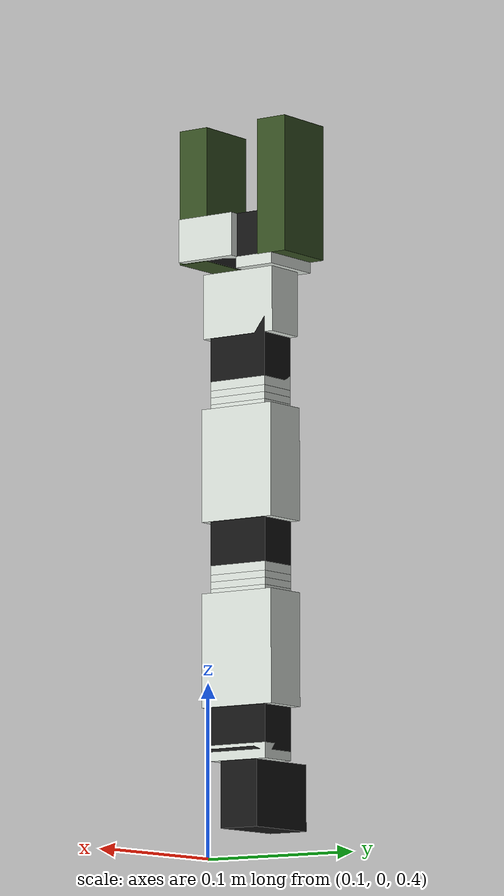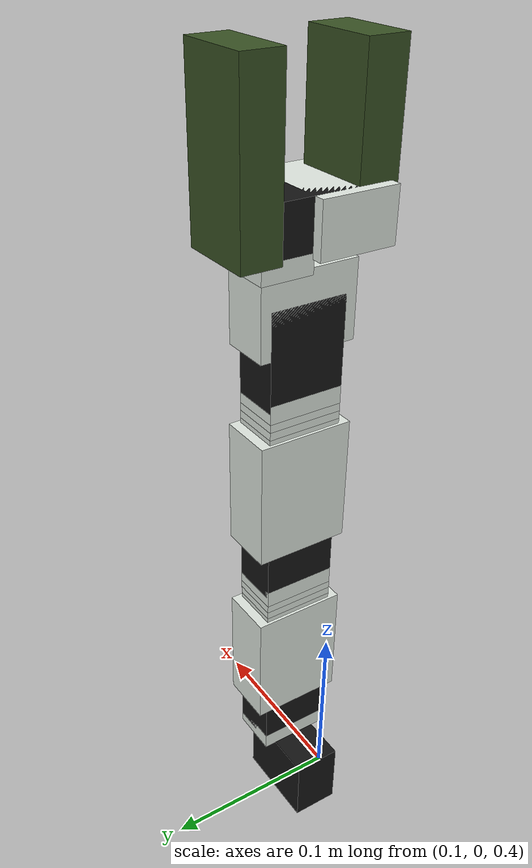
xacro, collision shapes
<?xml version="1.0"?>
<!-- Describe URDF for Turtlebot Arm -->
<robot name="turtlebot_arm" xmlns:xacro="http://ros.org/wiki/xacro">

    <!-- We can configure joints velocity limit and lower/upper limits
         to allow access to different operational areas, e.g. left handed vs. right handed robot -->
    <xacro:property name="joints_vlimit" value="1.571"/>
    <xacro:property name="pan_llimit" value="-2.617"/>
    <xacro:property name="pan_ulimit" value="2.617"/>
    <xacro:property name="shoulder_llimit" value="-2.617"/>
    <xacro:property name="shoulder_ulimit" value="2.617"/>
    <xacro:property name="elbow_llimit" value="-2.617"/>
    <xacro:property name="elbow_ulimit" value="2.617"/>
    <xacro:property name="wrist_llimit" value="-1.745"/>
    <xacro:property name="wrist_ulimit" value="1.745"/>

    <!-- Included URDF Files -->
    <xacro:include filename="$(find pxpincher_description)/urdf/turtlebot_arm.xacro"/>

    <!-- As we don't have here a turtlebot base, add a base_link link as its location reference -->
    <link name="base_link"/>

    <!-- Turtlebot arm macro -->
    <turtlebot_arm parent="base_link" color="White" gripper_color="Green"
                    pincher_gripper="false" turtlebot_gripper="true">
      <!-- Place the "floating" arm at the location it should be if mounted on a turtlebot,
           as pick and place and other demos assume this location -->
      <origin xyz="0.1 0.03 0.435"/>
    </turtlebot_arm>
</robot>

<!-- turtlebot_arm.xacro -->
<!-- Arm description for Turtlebot Arm and PhantomX Pincher arm -->
<robot xmlns:xacro="http://ros.org/wiki/xacro">
  <xacro:include filename="$(find pxpincher_description)/urdf/arm_hardware.xacro"/>

  <material name="White">
    <color rgba="0.87 0.90 0.87 1.0"/>
  </material>
  <material name="Black">
    <color rgba="0.08 0.08 0.08 1.0"/>
  </material>
  <material name="Gray">
    <color rgba="0.2 0.2 0.21 1.0"/>
  </material>
  <material name="Green">
    <color rgba="0.22 0.32 0.14 1.0"/>
  </material>

  <xacro:macro name="turtlebot_arm" params="parent color pincher_gripper turtlebot_gripper gripper_color *origin">
    <link name="arm_base_link"/>
    <joint name="arm_base_joint" type="fixed">
      <insert_block name="origin"/>
      <parent link="${parent}"/>
      <child link="arm_base_link"/>
    </joint>

    <!-- fake gripper_link joint gives us a free servo!
         this makes us 5DOF and saves you $44.90
         that's a lot of coin! -->
    <link name="gripper_link"/>
    <joint name="gripper_link_joint" type="revolute">
      <origin xyz="0 0 0.112" rpy="0 -1.57 0"/>
      <parent link="arm_wrist_flex_link"/>
      <child link="gripper_link"/>
      <limit effort="30" velocity="1" lower="-3.14" upper="3.14"/>
      <axis xyz="1 0 0"/>
    </joint>

    <!-- shoulder pan joint -->
    <dynamixel_AX12_fixed parent="arm_base_link" name="arm_shoulder_pan_servo">
      <origin xyz="0 0 0" rpy="${M_PI/2} 0 ${M_PI/2}"/>
    </dynamixel_AX12_fixed>
    <bioloid_F3_revolute parent="arm_shoulder_pan_servo_link" name="arm_shoulder_pan" color="${color}"
                         vlimit="${joints_vlimit}" llimit="${pan_llimit}" ulimit="${pan_ulimit}">
      <origin xyz="0 ${AX12_WIDTH/2} 0" rpy="${-M_PI/2} ${M_PI/2} ${M_PI}"/>
    </bioloid_F3_revolute>

    <!-- shoulder lift joint -->
    <dynamixel_AX12_fixed parent="arm_shoulder_pan_link" name="arm_shoulder_lift_servo">
      <origin xyz="0 0 ${-AX12_HEIGHT-F10_HEIGHT+0.001}" rpy="0 ${M_PI} 0"/>
    </dynamixel_AX12_fixed>
    <bioloid_F4_revolute parent="arm_shoulder_lift_servo_link" name="arm_shoulder_lift" color="${color}"
                         vlimit="${joints_vlimit}" llimit="${shoulder_llimit}" ulimit="${shoulder_ulimit}">
      <origin xyz="0 0 0" rpy="0 0 0"/>
    </bioloid_F4_revolute>
    <bioloid_F10_fixed parent="arm_shoulder_lift_link" name="arm_shoulder_F10_0" color="${color}">
      <origin xyz="0 0 ${F4_HEIGHT+F10_HEIGHT/2}" rpy="0 0 0"/>
    </bioloid_F10_fixed>
    <bioloid_F10_fixed parent="arm_shoulder_F10_0_link" name="arm_shoulder_F10_1" color="${color}">
      <origin xyz="0 0 ${F10_HEIGHT}" rpy="0 0 0"/>
    </bioloid_F10_fixed>
    <bioloid_F10_fixed parent="arm_shoulder_F10_1_link" name="arm_shoulder_F10_2" color="${color}">
      <origin xyz="0 0 ${F10_HEIGHT}" rpy="0 0 0"/>
    </bioloid_F10_fixed>
    <bioloid_F3_fixed parent="arm_shoulder_F10_2_link" name="arm_shoulder_F3_0" color="${color}">
      <origin xyz="0 0 ${F10_HEIGHT/2}" rpy="0 ${M_PI} 0"/>
    </bioloid_F3_fixed>

    <!-- elbow joint -->
    <dynamixel_AX12_fixed parent="arm_shoulder_F3_0_link" name="arm_elbow_flex_servo">
      <origin xyz="0 0 ${-AX12_HEIGHT-F10_HEIGHT+0.001}" rpy="0 ${M_PI} 0"/>
    </dynamixel_AX12_fixed>
    <bioloid_F4_revolute parent="arm_elbow_flex_servo_link" name="arm_elbow_flex" color="${color}"
                         vlimit="${joints_vlimit}" llimit="${elbow_llimit}" ulimit="${elbow_ulimit}">
      <origin xyz="0 0 0" rpy="0 0 0"/>
    </bioloid_F4_revolute>
    <bioloid_F10_fixed parent="arm_elbow_flex_link" name="arm_elbow_F10_0" color="${color}">
      <origin xyz="0 0 ${F4_HEIGHT+F10_HEIGHT/2}" rpy="0 0 0"/>
    </bioloid_F10_fixed>
    <bioloid_F10_fixed parent="arm_elbow_F10_0_link" name="arm_elbow_F10_1" color="${color}">
      <origin xyz="0 0 ${F10_HEIGHT}" rpy="0 0 0"/>
    </bioloid_F10_fixed>
    <bioloid_F10_fixed parent="arm_elbow_F10_1_link" name="arm_elbow_F10_2" color="${color}">
      <origin xyz="0 0 ${F10_HEIGHT}" rpy="0 0 0"/>
    </bioloid_F10_fixed>
    <bioloid_F3_fixed parent="arm_elbow_F10_2_link" name="arm_elbow_F3_0" color="${color}">
      <origin xyz="0 0 ${F10_HEIGHT/2}" rpy="0 ${M_PI} 0"/>
    </bioloid_F3_fixed>

    <!-- wrist joint -->
    <dynamixel_AX12_fixed parent="arm_elbow_F3_0_link" name="arm_wrist_flex_servo">
      <origin xyz="0 0 ${-AX12_HEIGHT-F10_HEIGHT+0.001}" rpy="0 ${M_PI} 0"/>
    </dynamixel_AX12_fixed>
    <bioloid_F2_revolute parent="arm_wrist_flex_servo_link" name="arm_wrist_flex" color="${color}"
                         vlimit="${joints_vlimit}" llimit="${wrist_llimit}" ulimit="${wrist_ulimit}">
      <origin xyz="0 0 0" rpy="0 0 0"/>
    </bioloid_F2_revolute>

  <!-- gripper - Load either Turtlebot gripper or Pincher Gripper -->
  <xacro:if value="${pincher_gripper}">
  <xacro:include filename="$(find pxpincher_description)/urdf/pincher_gripper.xacro"/>
  </xacro:if>
  <xacro:if value="${turtlebot_gripper}">
  <xacro:include filename="$(find pxpincher_description)/urdf/turtlebot_gripper.xacro"/>
  </xacro:if>

  </xacro:macro>

</robot>

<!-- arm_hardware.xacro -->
<!-- Basic URDF components for Turtlebot Arm and PhantomX Pincher Arm-->
<robot xmlns:xacro="http://ros.org/wiki/xacro">
  <xacro:property name="M_PI" value="3.14159"/>
  <xacro:property name="M_SCALE" value="0.001"/>
  <xacro:property name="F10_HEIGHT" value="0.004"/>
  <xacro:property name="F4_HEIGHT" value="0.0525"/>
  <xacro:property name="F3_HEIGHT" value="0.009"/>
  <xacro:property name="AX12_HEIGHT" value="0.0385"/>
  <xacro:property name="AX12_WIDTH" value="0.038"/>
  <xacro:property name="AX12_LENGTH" value="0.050"/>
  <xacro:property name="F2_HEIGHT" value="0.0265"/>
  <xacro:property name="FACTOR_GRIPPER_TRANSL" value="0.01"/>
  <xacro:property name="OFFSET_GRIPPER_TRANSL" value="0.029"/>

  <xacro:macro name="arm_mount" params="parent name color *origin">
    <joint name="${name}_joint" type="fixed">
      <insert_block name="origin"/>
      <parent link="${parent}"/>
      <child link="${name}_link"/>
    </joint>

    <link name="${name}_link">
      <inertial>
        <mass value="0.018"/>
        <origin xyz="0 0 0"/>
        <inertia ixx="0.000001" ixy="0.0" ixz="0.0"
                 iyy="0.000001" iyz="0.0"
                 izz="0.000001"/>
      </inertial>

      <visual>
        <origin xyz="-0.028 -0.0493 0.014" rpy="0.0 0.0 -${M_PI/2}"/>
        <geometry>
          <mesh filename="package://pxpincher_description/meshes/mount.stl" scale="${M_SCALE} ${M_SCALE} ${M_SCALE}"/>
        </geometry>
        <material name="${color}"/>
      </visual>

      <collision>
        <origin xyz="-0.01 0.0 0.0165" rpy="0.0 0.0 0.0"/>
        <geometry>
          <box size="0.074 0.074 0.004"/>
        </geometry>
      </collision>
    </link>

    <gazebo reference="${name}_link">
      <material>Gazebo/${color}</material>
      <selfCollide>true</selfCollide>
      <gravity>true</gravity>
    </gazebo>
  </xacro:macro>

  <xacro:macro name="finger_fixed" params="parent name color *origin">
    <joint name="${name}_joint" type="fixed">
      <insert_block name="origin"/>
      <parent link="${parent}"/>
      <child link="${name}_link"/>
    </joint>

    <link name="${name}_link">
      <inertial>
        <mass value="0.015"/>
        <origin xyz="0 0 0"/>
        <inertia ixx="0.000001" ixy="0.0" ixz="0.0"
                 iyy="0.000001" iyz="0.0"
                 izz="0.000001"/>
      </inertial>

      <visual>
        <origin xyz=" 0 0 0 " rpy="0 0 0"/>
        <geometry>
          <mesh filename="package://pxpincher_description/meshes/turtlebot_finger.stl" scale="${M_SCALE} ${M_SCALE} ${M_SCALE}"/>
        </geometry>
        <material name="${color}"/>
      </visual>

      <collision>
        <origin xyz="0.02645 0.0 -0.00655" rpy="0 0 0"/>
        <geometry>
          <box size="0.0783 0.03801 0.0193"/>
        </geometry>
      </collision>
    </link>

    <gazebo reference="${name}_link">
      <material>Gazebo/${color}</material>
      <selfCollide>true</selfCollide>
      <gravity>true</gravity>
    </gazebo>
  </xacro:macro>

  <xacro:macro name="dynamixel_AX12_fixed" params="parent name *origin">
    <joint name="${name}_joint" type="fixed">
      <insert_block name="origin"/>
      <parent link="${parent}"/>
      <child link="${name}_link"/>
    </joint>

    <link name="${name}_link">
      <inertial>
        <mass value="0.055"/>
        <origin xyz="0 0 0"/>
        <inertia ixx="0.000017012" ixy="0.0" ixz="0.0"
                 iyy="0.000013258" iyz="0.0"
                 izz="0.000009483"/>
      </inertial>

      <visual>
        <origin xyz=" 0 0 0 " rpy="0 0 0"/>
        <geometry>
          <mesh filename="package://pxpincher_description/meshes/ax12_box.stl" scale="${M_SCALE} ${M_SCALE} ${M_SCALE}"/>
        </geometry>
        <material name="Black"/>
      </visual>

      <collision>
        <origin xyz="0.0 0.0 -0.01241" rpy="0 0 0"/>
        <geometry>
          <box size="0.025 0.038 0.04762"/>
        </geometry>
      </collision>
    </link>

    <gazebo reference="${name}_link">
      <material>Gazebo/Black</material>
      <selfCollide>true</selfCollide>
      <gravity>true</gravity>
    </gazebo>
  </xacro:macro>

  <xacro:macro name="bioloid_F10_fixed" params="parent name color *origin">
    <joint name="${name}_joint" type="fixed">
      <insert_block name="origin"/>
      <parent link="${parent}"/>
      <child link="${name}_link"/>
    </joint>

    <link name="${name}_link">
      <inertial>
        <mass value="0.004"/>
        <origin xyz="0 0 0"/>
        <inertia ixx="0.000001" ixy="0.0" ixz="0.0"
                 iyy="0.000001" iyz="0.0"
                 izz="0.000001"/>
      </inertial>

      <visual>
        <origin xyz=" 0 0 0 " rpy="0 0 0"/>
        <geometry>
          <mesh filename="package://pxpincher_description/meshes/F10.stl" scale="${M_SCALE} ${M_SCALE} ${M_SCALE}"/>
        </geometry>
        <material name="${color}"/>
      </visual>

      <collision>
        <origin xyz="0.0 0.0 0.0" rpy="0 0 0"/>
        <geometry>
          <box size="0.025 0.038 0.004"/>
        </geometry>
      </collision>
    </link>

    <gazebo reference="${name}_link">
      <material>Gazebo/${color}</material>
      <selfCollide>true</selfCollide>
      <gravity>true</gravity>
    </gazebo>
  </xacro:macro>

  <xacro:macro name="bioloid_F3_fixed" params="parent name color *origin">
    <joint name="${name}_joint" type="fixed">
      <insert_block name="origin"/>
      <parent link="${parent}"/>
      <child link="${name}_link"/>
    </joint>

    <link name="${name}_link">
      <inertial>
        <mass value="0.005"/>
        <origin xyz="0 0 0"/>
        <inertia ixx="0.000001" ixy="0.0" ixz="0.0"
                 iyy="0.000001" iyz="0.0"
                 izz="0.000001"/>
      </inertial>

      <visual>
        <origin xyz=" 0 0 0 " rpy="0 0 0"/>
        <geometry>
          <mesh filename="package://pxpincher_description/meshes/F3.stl" scale="${M_SCALE} ${M_SCALE} ${M_SCALE}"/>
        </geometry>
        <material name="${color}"/>
      </visual>

      <collision>
        <origin xyz="0.0 0.0 -0.0045" rpy="0 0 0"/>
        <geometry>
          <box size="0.025 0.038 0.009"/>
        </geometry>
      </collision>
    </link>

    <gazebo reference="${name}_link">
      <material>Gazebo/${color}</material>
      <selfCollide>true</selfCollide>
      <gravity>true</gravity>
    </gazebo>
  </xacro:macro>

  <xacro:macro name="bioloid_F3_revolute" params="parent name color llimit ulimit vlimit *origin">
    <joint name="${name}_joint" type="revolute">
      <insert_block name="origin"/>
      <axis xyz="0 0 -1"/>
      <limit effort="30" velocity="${vlimit}" lower="${llimit}" upper="${ulimit}"/>
      <dynamics friction="0.13"/>
      <parent link="${parent}"/>
      <child link="${name}_link"/>
    </joint>

    <link name="${name}_link">
      <inertial>
        <mass value="0.008"/>
        <origin xyz="0 0 0"/>
        <inertia ixx="0.000001" ixy="0.0" ixz="0.0"
                 iyy="0.000001" iyz="0.0"
                 izz="0.000001"/>
      </inertial>

      <visual>
        <origin xyz=" 0 0 0 " rpy="0 0 0"/>
        <geometry>
          <mesh filename="package://pxpincher_description/meshes/F3.stl" scale="${M_SCALE} ${M_SCALE} ${M_SCALE}"/>
        </geometry>
        <material name="${color}"/>
      </visual>

      <collision>
        <origin xyz="0.0 0.0 -0.0045" rpy="0 0 0"/>
        <geometry>
          <box size="0.025 0.038 0.009"/>
        </geometry>
      </collision>
    </link>

    <gazebo reference="${name}_link">
      <material>Gazebo/${color}</material>
      <selfCollide>true</selfCollide>
      <gravity>true</gravity>
    </gazebo>
  </xacro:macro>

  <xacro:macro name="bioloid_F2_revolute" params="parent name color llimit ulimit vlimit *origin">
    <joint name="${name}_joint" type="revolute">
      <insert_block name="origin"/>
      <axis xyz="0 1 0"/>
      <limit effort="30" velocity="${vlimit}" lower="${llimit}" upper="${ulimit}"/>
      <dynamics friction="0.13"/>
      <parent link="${parent}"/>
      <child link="${name}_link"/>
    </joint>

    <link name="${name}_link">
      <inertial>
        <mass value="0.010"/>
        <origin xyz="0 0 0"/>
        <inertia ixx="0.000001" ixy="0.0" ixz="0.0"
                 iyy="0.000001" iyz="0.0"
                 izz="0.000001"/>
      </inertial>

      <visual>
        <origin xyz=" 0 0 0 " rpy="0 0 0"/>
        <geometry>
          <mesh filename="package://pxpincher_description/meshes/F2.stl" scale="${M_SCALE} ${M_SCALE} ${M_SCALE}"/>
        </geometry>
        <material name="${color}"/>
      </visual>

      <collision>
        <origin xyz="0.0 0.0 0.00775" rpy="0 0 0"/>
        <geometry>
          <box size="0.025 0.0485 0.0375"/>
        </geometry>
      </collision>
    </link>

    <gazebo reference="${name}_link">
      <material>Gazebo/${color}</material>
      <selfCollide>true</selfCollide>
      <gravity>true</gravity>
    </gazebo>
  </xacro:macro>

  <xacro:macro name="bioloid_F4_revolute" params="parent name color llimit ulimit vlimit *origin">
    <joint name="${name}_joint" type="revolute">
      <insert_block name="origin"/>
      <axis xyz="0 1 0"/>
      <limit effort="30" velocity="${vlimit}" lower="${llimit}" upper="${ulimit}"/>
      <dynamics friction="0.13"/>
      <parent link="${parent}"/>
      <child link="${name}_link"/>
    </joint>

    <link name="${name}_link">
      <inertial>
        <mass value="0.016"/>
        <origin xyz="0 0 0"/>
        <inertia ixx="0.000001" ixy="0.0" ixz="0.0"
                 iyy="0.000001" iyz="0.0"
                 izz="0.000001"/>
      </inertial>

      <visual>
        <origin xyz=" 0 0 0 " rpy="0 0 0"/>
        <geometry>
          <mesh filename="package://pxpincher_description/meshes/F4.stl" scale="${M_SCALE} ${M_SCALE} ${M_SCALE}"/>
        </geometry>
        <material name="${color}"/>
      </visual>

      <collision>
        <origin xyz="0.0 0.0 0.0215" rpy="0 0 0"/>
        <geometry>
          <box size="0.028 0.0485 0.065"/>
        </geometry>
      </collision>
    </link>

    <gazebo reference="${name}_link">
      <material>Gazebo/${color}</material>
      <selfCollide>true</selfCollide>
      <gravity>true</gravity>
    </gazebo>
  </xacro:macro>

  <xacro:macro name="gripper_finger_base" params="parent name color *origin">
    <joint name="${name}_joint" type="fixed">
      <insert_block name="origin"/>
      <parent link="${parent}"/>
      <child link="${name}_link"/>
    </joint>

    <link name="${name}_link">
      <inertial>
        <mass value="0.00001"/>
        <origin xyz="0 0 0"/>
        <inertia ixx="1.0" ixy="0.0" ixz="0.0"
          iyy="1.0" iyz="0.0"
          izz="1.0"/>
      </inertial>
      <visual>
        <origin xyz="0.016 0 -.015 " rpy="${M_PI} ${-M_PI/2} ${M_PI/2}"/>
        <geometry>
          <mesh filename="package://pxpincher_description/meshes/pincher_finger_base.stl" scale=".01 .01 .01"/>
        </geometry>
        <material name="${color}"/>
      </visual>

      <collision>
        <origin xyz="0.015 0 -0.0135" rpy="0 0 0"/>
        <geometry>
          <box size="0.002 0.040 0.075"/>
        </geometry>
      </collision>
    </link >

    <gazebo reference="${name}_link">
      <material>Gazebo/${color}</material>
      <selfCollide>true</selfCollide>
      <gravity>true</gravity>
    </gazebo>
  </xacro:macro>

    <xacro:macro name="pincher_gripper" params="name color *origin">
      <link name="${name}_link">
      <inertial>
        <mass value="0.00001"/>
        <origin xyz="0 0 0"/>
        <inertia ixx="1.0" ixy="0.0" ixz="0.0"
          iyy="1.0" iyz="0.0"
          izz="1.0"/>
      </inertial>
      <visual>
        <insert_block name="origin"/>
        <geometry>
          <mesh filename="package://pxpincher_description/meshes/pincher_finger.stl" scale=".01 .01 .01"/>
        </geometry>
        <material name="${color}"/>
      </visual>
      <collision>
        <insert_block name="origin"/>
        <geometry>
          <box size="0.036 0.028 0.004"/>
        </geometry>
      </collision>
    </link>

      <gazebo reference="${name}_link">
      <material>Gazebo/${color}</material>
      <selfCollide>true</selfCollide>
      <gravity>true</gravity>
    </gazebo>
  </xacro:macro>

</robot>

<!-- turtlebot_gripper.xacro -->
<!-- Turtlebot Arm gripper URDF-->
<robot xmlns:xacro="http://ros.org/wiki/xacro">
    <bioloid_F3_fixed parent="arm_wrist_flex_link" name="arm_wrist_F3_0" color="${color}">
      <origin xyz="0 0.016 ${F2_HEIGHT}" rpy="0 ${M_PI} ${-M_PI/2}"/>
    </bioloid_F3_fixed>
    <!-- gripper joint -->
    <dynamixel_AX12_fixed parent="arm_wrist_F3_0_link" name="gripper_servo">
      <origin xyz="-0.02275 0 ${-AX12_WIDTH/2}" rpy="${M_PI} ${M_PI/2} 0"/>
    </dynamixel_AX12_fixed>

    <!-- finger 1 -->
    <joint name="gripper_joint" type="revolute">
      <origin xyz="0 0 0" rpy="0 0 0"/>
      <axis xyz="0 1 0"/>
      <limit effort="30" velocity="0.785" lower="-0.40" upper="0.46"/>
      <parent link="gripper_servo_link"/>
      <child link="gripper_active_link"/>
    </joint>
    <link name="gripper_active_link">
      <inertial>
        <mass value="0.010"/>
        <origin xyz="0 0 0"/>
        <inertia ixx="0.000001" ixy="0.0" ixz="0.0"
                 iyy="0.000001" iyz="0.0"
                 izz="0.000001"/>
      </inertial>
      <visual>
        <origin xyz=" 0 0 0 " rpy="0 0 0"/>
        <geometry>
          <mesh filename="package://pxpincher_description/meshes/F2.stl" scale="${M_SCALE} ${M_SCALE} ${M_SCALE}"/>
        </geometry>
        <material name="${color}"/>
      </visual>
      <collision>
        <origin xyz="0.0 0.0 0.00775" rpy="0 0 0"/>
        <geometry>
          <box size="0.025 0.0485 0.0375"/>
        </geometry>
      </collision>
    </link>
    <finger_fixed parent="gripper_active_link" name="gripper_active_finger" color="${gripper_color}">
      <origin xyz="0 0 ${F2_HEIGHT}" rpy="0 0 0"/>
    </finger_fixed>

    <!-- finger 2 -->
    <bioloid_F3_fixed parent="gripper_servo_link" name="gripper_static" color="${color}">
      <origin xyz="0 0 ${-AX12_HEIGHT-F10_HEIGHT+0.001}" rpy="0 ${M_PI} 0"/>
    </bioloid_F3_fixed>
    <finger_fixed parent="gripper_static_link" name="gripper_static_finger" color="${gripper_color}">
      <origin xyz="0 0 0" rpy="0 0 ${M_PI}"/>
    </finger_fixed>
</robot>
